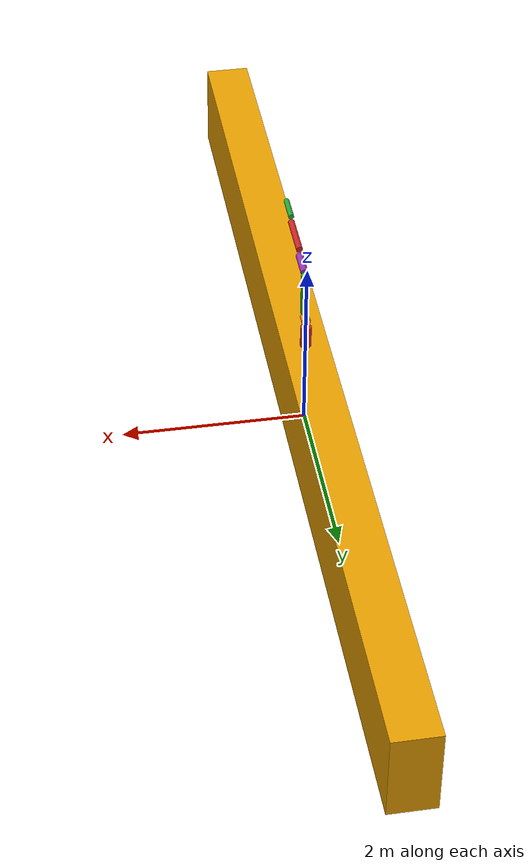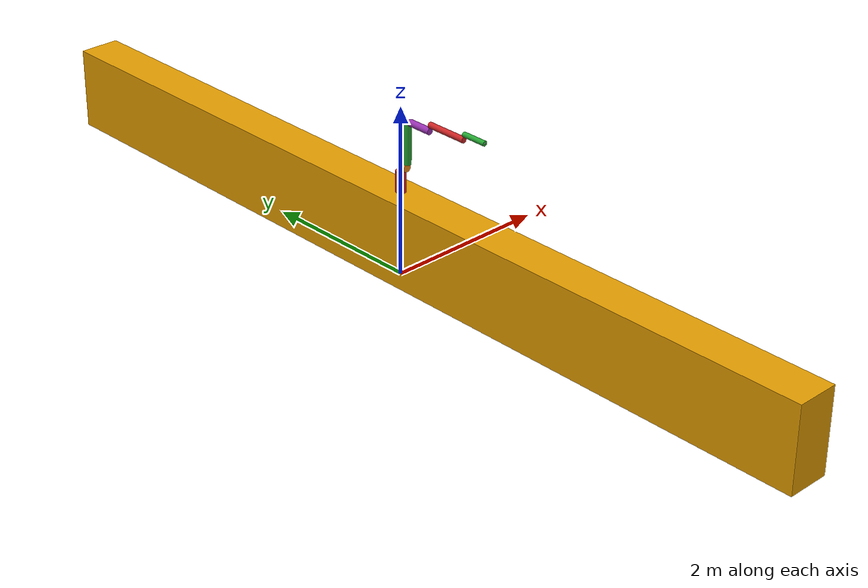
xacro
<?xml version="1.0"?>
        <robot xmlns:xacro="http://wiki.ros.org/xacro"  name="arm">
        <xacro:include filename="$(find man_gazebo)/urdf/common.gazebo.xacro" />
        <xacro:include filename="$(find man_gazebo)/urdf/6dof/transmission_6dof.xacro" />
        <xacro:include filename="$(find man_gazebo)/urdf/gazebo.xacro" />
        <xacro:macro name="cylinder_inertial" params="radius length mass *origin">

        <link name="world" />
          <joint name="world_joint" type="fixed">
            <parent link="world" />
            <child link = "base_link" />
            <origin xyz="0 0 0" rpy="0.0 0.0 0.0" />
          </joint>

        <inertial>
          <mass value="${mass}" />
          <xacro:insert_block name="origin" />
          <inertia ixx="${0.0833333 * mass * (3 * radius * radius + length * length)}" ixy="0.0" ixz="0.0"
            iyy="${0.0833333 * mass * (3 * radius * radius + length * length)}" iyz="0.0"
            izz="${0.5 * mass * radius * radius}" />
        </inertial>
        </xacro:macro>

        <xacro:macro name="joint_limit" params="joint_type link_length ">
            <xacro:if value="${joint_type == 'revolute'}"  >
                <xacro:property name="joint_upper_limit" value="${pi}" />
                <xacro:property name="joint_lower_limit" value="${-pi}" />
            </xacro:if>
            <xacro:unless value="${joint_type == 'revolute'}"  >
                <xacro:property name="joint_upper_limit" value="${link_length}" />
                <xacro:property name="joint_lower_limit" value="${0}" />
            </xacro:unless>
        <limit lower="${joint_lower_limit}" upper="${joint_upper_limit}" effort="150.0" velocity="3.15"/>
        </xacro:macro>

        <xacro:macro name="arm_robot" params="prefix ">
        <xacro:property name="base_radius" value="0.060" />
        <xacro:property name="base_length"  value="11" />
        <xacro:property name="base_height"  value="1" />
        <xacro:property name="base_width"  value="0.5" />
        <xacro:property name="base_mass" value="44" />

            <!-- Inertia parameters -->
        <xacro:property name="link0_mass" value="7" />
        <xacro:property name="link1_mass" value="3.7" />
        <xacro:property name="link2_mass" value="3.65745" />
        <xacro:property name="link3_mass" value="2.19447" />
        <xacro:property name="link4_mass" value="3.65745" />
        <xacro:property name="link5_mass" value="2.19447" />
        <xacro:property name="link6_mass" value="0.73149" />

        <xacro:property name="link0_radius" value="0.060" />
        <xacro:property name="link1_radius" value="0.049" />
        <xacro:property name="link2_radius" value="0.045" />
        <xacro:property name="link3_radius" value="0.040" />
        <xacro:property name="link4_radius" value="0.035" />
        <xacro:property name="link5_radius" value="0.030" />
        <xacro:property name="link6_radius" value="0.025" />
        <!-- Base Link -->
        <link name="${prefix}base_link" >
          <visual>
                <origin xyz="0 0 ${base_height/2}" rpy="0 0 0" />
            <geometry>
                    <box size="${base_width} ${base_length} ${base_height}"/>
            </geometry>
          </visual>
          <collision>
                 <origin xyz="0 0 ${base_height/2}" rpy="0 0 0" />
            <geometry>
                    <box size="${base_width} ${base_length} ${base_height}"/>
            </geometry>
          </collision>
          <inertial>
            <mass value="${base_mass}" />
            <origin xyz="0.0 0.0 ${base_height/2}" />
            <inertia ixx="436.5" ixy="0"  ixz="0"
                              iyy="1.8" iyz="0"
                                      izz="436.5"/>
          </inertial>

        </link>

        <xacro:property name="joint0_type" value="prismatic" />
        <xacro:property name="joint0_axe" value="0 1 0" />
        <xacro:property name="link0_length" value="0.25" />

        <!--  joint 0   -->
        <joint name="${prefix}joint0" type="${joint0_type}">
          <parent link="${prefix}base_link" />
          <child link = "${prefix}link0" />
          <origin xyz="0.0 0 ${base_height + link0_radius+0.01}" rpy="0 0.0 0" />
          <axis xyz="${joint0_axe}" />
          <xacro:joint_limit joint_type="${joint0_type}" link_length="${base_length/2}"/>
          <dynamics damping="0.0" friction="0.0"/>
        </joint>

         <!--  link 0  -->
        <link name="${prefix}link0">
          <visual>
            <origin xyz="0 0 ${link0_radius} " rpy="0 0 0" />
            <geometry>
                <cylinder radius="${link0_radius}" length="${link0_length}"/>
            </geometry>
          </visual>
          <collision>
             <origin xyz="0 0 ${link0_radius}" rpy="0 0 0" />
            <geometry>
                <cylinder radius="${link0_radius}" length="${link0_length}"  mass="${link0_mass}"/>
            </geometry>
          </collision>
          <xacro:cylinder_inertial radius="${link0_radius}" length="${link0_length}" mass="${link0_mass}">
            <origin xyz="0.0 0.0 ${link0_radius}" rpy="0 0 0" />
          </xacro:cylinder_inertial>
        </link>

<xacro:property name="joint1_type" value="revolute"/>
<xacro:property name="joint1_axe" value="0 0 1"/>
<xacro:property name="link1_length" value="0.1"/>
<!--  joint 1    -->
        <joint name="${prefix}joint1" type="${joint1_type}">
          <parent link="${prefix}link0" />
          <child link="${prefix}link1" />
          <origin xyz="0.0 0.0 ${link0_length}" rpy="${pi/2} 0.0 0.0" />
          <axis xyz="${joint1_axe}"/>
          <xacro:joint_limit joint_type="${joint1_type}" link_length="${link1_length}"/>
          <dynamics damping="0.0" friction="0.0"/>
        </joint>
    <!--  link 1  -->
        <link name="${prefix}link1">
          <visual>
            <origin xyz="0 0 ${link1_length / 2} " rpy="0 0 0" />
            <geometry>
                <cylinder radius="${link1_radius}" length="${link1_length}"/>
            </geometry>
          </visual>
          <collision>
             <origin xyz="0 0 ${link1_length / 2}" rpy="0 0 0" />
            <geometry>
                <cylinder radius="${link1_radius}" length="${link1_length}"/>
            </geometry>
          </collision>
          <xacro:cylinder_inertial radius="${link1_radius}" length="${link1_length}" mass="${link1_mass}">
            <origin xyz="0.0 0.0 ${link1_length / 2}" rpy="0 0 0" />
          </xacro:cylinder_inertial>
        </link>
<xacro:property name="joint2_type" value="revolute"/>
<xacro:property name="joint2_axe" value="0 0 1"/>
<xacro:property name="link2_length" value="0.5"/>
<!--  joint 2   -->
        <joint name="${prefix}joint2" type="${joint2_type}">
          <parent link="${prefix}link1"/>
          <child link="${prefix}link2" />
          <origin xyz="0 ${link1_radius} ${link1_length}" rpy="${-1/2*pi} 0 0 "/>
          <axis xyz="${joint2_axe}"/>
          <xacro:joint_limit joint_type="${joint2_type}" link_length="${link2_length}"/>
          <dynamics damping="0.0" friction="0.0"/>
        </joint>
    <!-- link 2   -->
        <link name="${prefix}link2">
          <visual>
            <origin xyz="0 0 ${link2_length / 2}" rpy="0 0 0" />
            <geometry>
                <cylinder radius="${link2_radius}" length="${link2_length}"/>
            </geometry>
          </visual>
          <collision>
            <origin xyz="0 0 ${link2_length / 2 }" rpy="0 0 0" />
            <geometry>
                <cylinder radius="${link2_radius}" length="${link2_length}"/>
            </geometry>
          </collision>
          <xacro:cylinder_inertial radius="${link2_radius}" length="${link2_length}" mass="${link2_mass}">
            <origin xyz="0.0 0.0 ${link2_length / 2 }" rpy="0 0 0" />
          </xacro:cylinder_inertial>
        </link>
<xacro:property name="joint3_type" value="revolute"/>
<xacro:property name="joint3_axe" value="0 0 1"/>
<xacro:property name="link3_length" value="0.3"/>
<!--  joint 3   -->
        <joint name="${prefix}joint3" type="${joint3_type}">
          <parent link="${prefix}link2"/>
          <child link="${prefix}link3" />
          <origin xyz="0 -${link2_radius} ${link2_length}" rpy="${1/2*pi} 0 0 "/>
          <axis xyz="${joint3_axe}"/>
          <xacro:joint_limit joint_type="${joint3_type}" link_length="${link3_length}"/>
          <dynamics damping="0.0" friction="0.0"/>
        </joint>
    <!-- link 3   -->
        <link name="${prefix}link3">
          <visual>
            <origin xyz="0 0 ${link3_length / 2}" rpy="0 0 0" />
            <geometry>
                <cylinder radius="${link3_radius}" length="${link3_length}"/>
            </geometry>
          </visual>
          <collision>
            <origin xyz="0 0 ${link3_length / 2 }" rpy="0 0 0" />
            <geometry>
                <cylinder radius="${link3_radius}" length="${link3_length}"/>
            </geometry>
          </collision>
          <xacro:cylinder_inertial radius="${link3_radius}" length="${link3_length}" mass="${link3_mass}">
            <origin xyz="0.0 0.0 ${link3_length / 2 }" rpy="0 0 0" />
          </xacro:cylinder_inertial>
        </link>
<xacro:property name="joint4_type" value="revolute"/>
<xacro:property name="joint4_axe" value="0 1 0"/>
<xacro:property name="link4_length" value="0.5"/>
<!--  joint 4   -->
        <joint name="${prefix}joint4" type="${joint4_type}">
          <parent link="${prefix}link3"/>
          <child link="${prefix}link4" />
          <origin xyz="0 ${link3_radius+link4_radius} ${link3_length}" rpy="0 0 0 "/>
          <axis xyz="${joint4_axe}"/>
          <xacro:joint_limit joint_type="${joint4_type}" link_length="${link4_length}"/>
          <dynamics damping="0.0" friction="0.0"/>
        </joint>
    <!-- link 4   -->
        <link name="${prefix}link4">
          <visual>
            <origin xyz="0 0 ${link4_length / 2}" rpy="0 0 0" />
            <geometry>
                <cylinder radius="${link4_radius}" length="${link4_length}"/>
            </geometry>
          </visual>
          <collision>
            <origin xyz="0 0 ${link4_length / 2 }" rpy="0 0 0" />
            <geometry>
                <cylinder radius="${link4_radius}" length="${link4_length}"/>
            </geometry>
          </collision>
          <xacro:cylinder_inertial radius="${link4_radius}" length="${link4_length}" mass="${link4_mass}">
            <origin xyz="0.0 0.0 ${link4_length / 2 }" rpy="0 0 0" />
          </xacro:cylinder_inertial>
        </link>
<xacro:property name="joint5_type" value="revolute"/>
<xacro:property name="joint5_axe" value="0 1 0"/>
<xacro:property name="link5_length" value="0.3"/>
<!--  joint 5   -->
        <joint name="${prefix}joint5" type="${joint5_type}">
          <parent link="${prefix}link4"/>
          <child link="${prefix}link5" />
          <origin xyz="0 ${link4_radius+link5_radius} ${link4_length}" rpy="0 0 0 "/>
          <axis xyz="${joint5_axe}"/>
          <xacro:joint_limit joint_type="${joint5_type}" link_length="${link5_length}"/>
          <dynamics damping="0.0" friction="0.0"/>
        </joint>
    <!-- link 5   -->
        <link name="${prefix}link5">
          <visual>
            <origin xyz="0 0 ${link5_length / 2}" rpy="0 0 0" />
            <geometry>
                <cylinder radius="${link5_radius}" length="${link5_length}"/>
            </geometry>
          </visual>
          <collision>
            <origin xyz="0 0 ${link5_length / 2 }" rpy="0 0 0" />
            <geometry>
                <cylinder radius="${link5_radius}" length="${link5_length}"/>
            </geometry>
          </collision>
          <xacro:cylinder_inertial radius="${link5_radius}" length="${link5_length}" mass="${link5_mass}">
            <origin xyz="0.0 0.0 ${link5_length / 2 }" rpy="0 0 0" />
          </xacro:cylinder_inertial>
        </link>

        <!-- Sprayer joint - fictive joint -->
        <joint name="fake_joint" type="revolute">
            <parent link="${prefix}link5" />
            <child link = "camera_link" />
            <origin xyz="0.0  0.0 ${link5_length}" rpy="0.0 0.0 0" />
            <axis xyz="0 0 1"/>
            <xacro:joint_limit joint_type="revolute" link_length="0.1"/>
            <dynamics damping="0.0" friction="0.0"/>
        </joint>

        <!-- Sprayer -->
        <link name="camera_link">
          <collision>
            <origin rpy="0 0 0" xyz="0 0 0.005"/>
            <geometry>
            <box size="0.01 0.01 0.01"/>
            </geometry>
          </collision>
        <visual>
            <geometry>
            <box size="0.01 0.01 0.01"/>
            </geometry>
        </visual>
          <xacro:cylinder_inertial radius="0.01" length="0.01" mass="0.01">
            <origin xyz="0.0 0.0 0.005" rpy="0 0 0" />
          </xacro:cylinder_inertial>
        </link>

        <!-- ee link -->
        <link name="${prefix}ee_link">
          <collision>
            <geometry>
              <box size="0.01 0.01 0.01"/>
            </geometry>
            <origin rpy="0 0 0" xyz="0 0 0.005"/>
          </collision>
        </link>

            <!-- ee joint -->
        <joint name="${prefix}ee_fixed_joint" type="fixed">
          <parent link="camera_link" />
          <child link = "${prefix}ee_link" />
          <origin xyz="0.0  0.0 0.01" rpy="0.0 0.0 0" />
        </joint>

            <xacro:arm_transmission prefix="${prefix}" />
            <xacro:arm_gazebo prefix="${prefix}" />
            </xacro:macro>
            <xacro:arm_robot prefix=""/>
        </robot>

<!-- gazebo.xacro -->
<robot xmlns:xacro="http://wiki.ros.org/xacro">

<material name="Orange">
    <color rgba="${255/255} ${108/255} ${10/255} 1.0"/>
  </material>
<material name="Green">
    <color rgba="${0/255} ${255/255} ${0/255} 0.7"/>
</material>
<material name="LightGrey">
     <color rgba="0.7 0.7 0.7 1.0"/>
</material>
<material name="Blue">
     <color rgba="${0/255} ${0/255} ${255/255} 1.0"/>
</material>
<material name="Red">
     <color rgba="${255/255} ${0/255} ${0/255} 1.0"/>
</material>
<material name="Purple">
     <color rgba="0.5 0 0.5 1.0"/>
</material>

  <xacro:macro name="arm_gazebo" params="prefix">
    <gazebo reference="${prefix}link0">
      <selfCollide>true</selfCollide>
	  <material>Gazebo/Red</material>
    </gazebo>
    <gazebo reference="${prefix}link1">
      <selfCollide>true</selfCollide>
	  <material>Gazebo/Orange</material>
    </gazebo>
    <gazebo reference="${prefix}link2">
      <selfCollide>true</selfCollide>
	  <material>Gazebo/Green</material>
    </gazebo>
    <gazebo reference="${prefix}link3">
      <selfCollide>true</selfCollide>
	  <material>Gazebo/Purple</material>
    </gazebo>
    <gazebo reference="${prefix}link4">
      <selfCollide>true</selfCollide>
	  <material>Gazebo/Red</material>
    </gazebo>
    <gazebo reference="${prefix}link5">
      <selfCollide>true</selfCollide>
	  <material>Gazebo/Green</material>
    </gazebo>
    <gazebo reference="${prefix}link6">
      <selfCollide>true</selfCollide>
	  <material>Gazebo/Blue</material>
    </gazebo>
    <gazebo reference="${prefix}ee_link">
      <selfCollide>true</selfCollide>
    </gazebo>
    <gazebo reference="sprayer_link">
      <selfCollide>true</selfCollide>
    </gazebo>

  </xacro:macro>

</robot>
